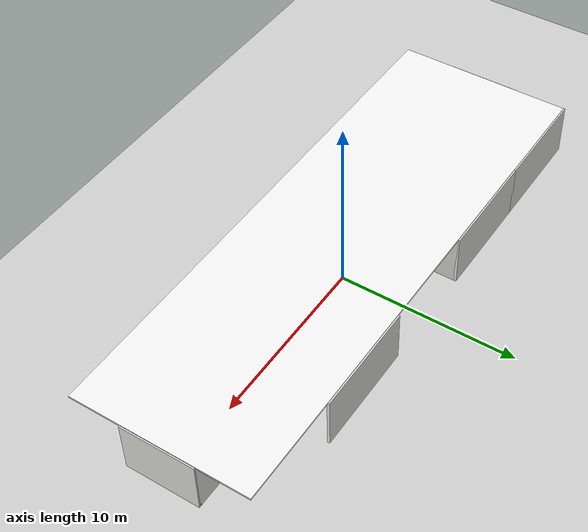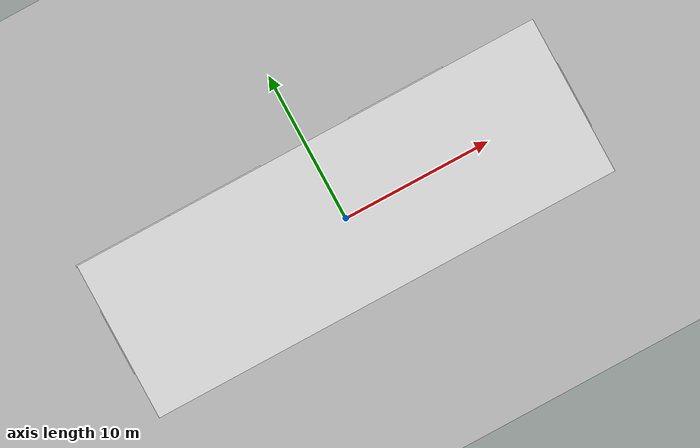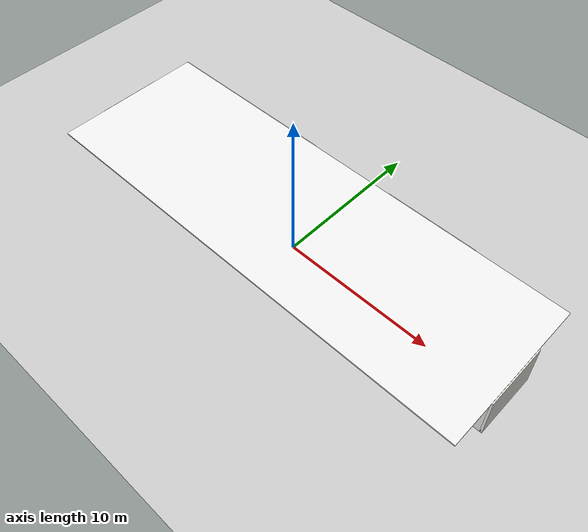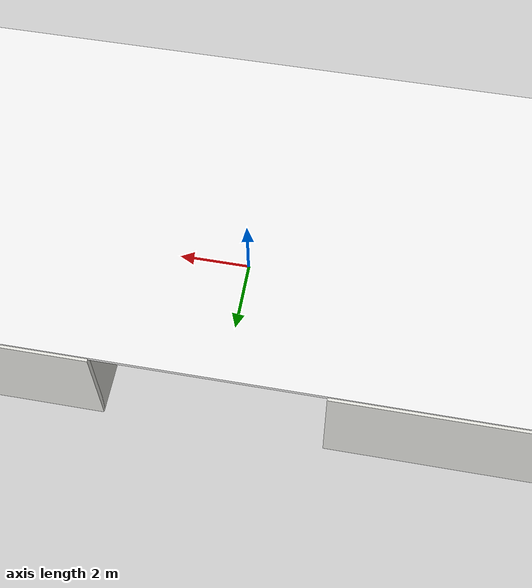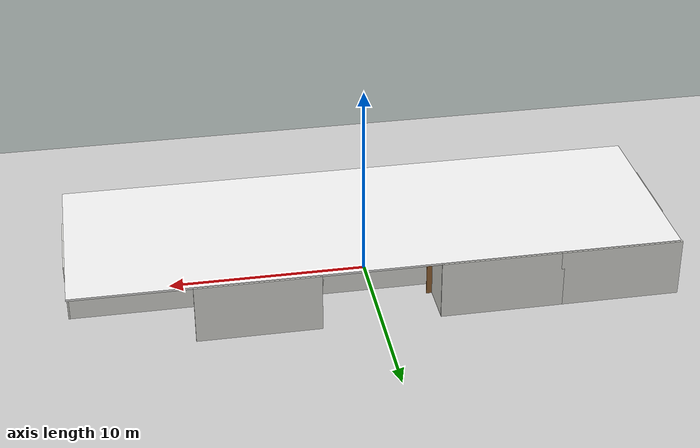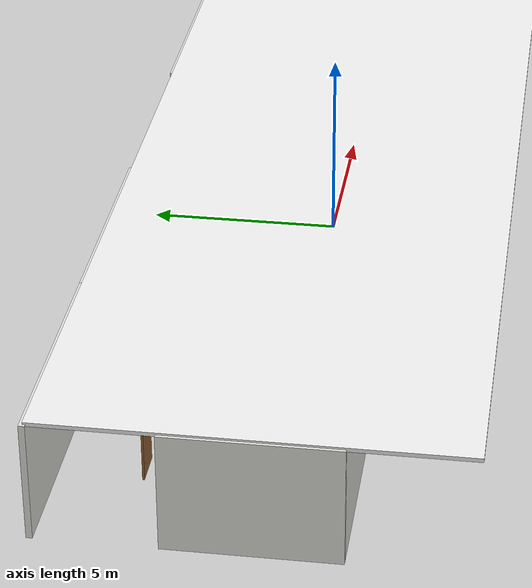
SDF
<?xml version="1.0" ?>
<sdf version="1.8">
  <world name="hospital_corridor">

    <!-- Physics -->
    <physics name="1ms" type="ignored">
      <max_step_size>0.001</max_step_size>
      <real_time_factor>1.0</real_time_factor>
    </physics>

    <!-- Required Ignition plugins -->
    <plugin filename="ignition-gazebo-physics-system"       name="ignition::gazebo::systems::Physics"/>
    <plugin filename="ignition-gazebo-user-commands-system" name="ignition::gazebo::systems::UserCommands"/>
    <plugin filename="ignition-gazebo-scene-broadcaster-system" name="ignition::gazebo::systems::SceneBroadcaster"/>
    <plugin filename="ignition-gazebo-sensors-system"       name="ignition::gazebo::systems::Sensors">
      <render_engine>ogre</render_engine>
    </plugin>

    <!-- Gravity -->
    <gravity>0 0 -9.8</gravity>

    <!-- ==================== LIGHTING ==================== -->
    <light type="directional" name="sun">
      <cast_shadows>true</cast_shadows>
      <pose>0 0 10 0 0 0</pose>
      <diffuse>0.9 0.9 0.85 1</diffuse>
      <specular>0.2 0.2 0.2 1</specular>
      <attenuation><range>1000</range><constant>0.9</constant><linear>0.01</linear><quadratic>0.001</quadratic></attenuation>
      <direction>-0.5 0.1 -0.9</direction>
    </light>

    <!-- Ceiling strip lights -->
    <light type="point" name="light_corridor1">
      <pose>0 0 2.8 0 0 0</pose>
      <diffuse>1 1 0.95 1</diffuse>
      <specular>0.1 0.1 0.1 1</specular>
      <attenuation><range>12</range><constant>0.5</constant><linear>0.1</linear><quadratic>0.01</quadratic></attenuation>
      <cast_shadows>false</cast_shadows>
    </light>

    <light type="point" name="light_corridor2">
      <pose>8 0 2.8 0 0 0</pose>
      <diffuse>1 1 0.95 1</diffuse>
      <specular>0.1 0.1 0.1 1</specular>
      <attenuation><range>12</range><constant>0.5</constant><linear>0.1</linear><quadratic>0.01</quadratic></attenuation>
      <cast_shadows>false</cast_shadows>
    </light>

    <light type="point" name="light_corridor3">
      <pose>-8 0 2.8 0 0 0</pose>
      <diffuse>1 1 0.95 1</diffuse>
      <specular>0.1 0.1 0.1 1</specular>
      <attenuation><range>12</range><constant>0.5</constant><linear>0.1</linear><quadratic>0.01</quadratic></attenuation>
      <cast_shadows>false</cast_shadows>
    </light>

    <!-- ==================== GROUND PLANE ==================== -->
    <model name="ground_plane">
      <static>true</static>
      <link name="link">
        <collision name="collision">
          <geometry><plane><normal>0 0 1</normal><size>50 50</size></plane></geometry>
        </collision>
        <visual name="visual">
          <geometry><plane><normal>0 0 1</normal><size>50 50</size></plane></geometry>
          <material>
            <ambient>0.8 0.8 0.8 1</ambient>
            <diffuse>0.8 0.8 0.8 1</diffuse>
          </material>
        </visual>
      </link>
    </model>

    <!-- ==================== CEILING ==================== -->
    <model name="ceiling">
      <static>true</static>
      <pose>0 0 3.0 0 0 0</pose>
      <link name="link">
        <collision name="collision">
          <geometry><box><size>30 10 0.1</size></box></geometry>
        </collision>
        <visual name="visual">
          <geometry><box><size>30 10 0.1</size></box></geometry>
          <material><ambient>0.95 0.95 0.95 1</ambient><diffuse>0.95 0.95 0.95 1</diffuse></material>
        </visual>
      </link>
    </model>

    <!-- ==================== MAIN CORRIDOR WALLS ==================== -->
    <!-- South wall (long) -->
    <model name="wall_south">
      <static>true</static>
      <pose>0 -2.0 1.5 0 0 0</pose>
      <link name="link">
        <collision name="collision"><geometry><box><size>30 0.15 3.0</size></box></geometry></collision>
        <visual name="visual">
          <geometry><box><size>30 0.15 3.0</size></box></geometry>
          <material><ambient>0.9 0.9 0.88 1</ambient><diffuse>0.9 0.9 0.88 1</diffuse></material>
        </visual>
      </link>
    </model>

    <!-- North wall (long) -->
    <model name="wall_north">
      <static>true</static>
      <pose>0 2.0 1.5 0 0 0</pose>
      <link name="link">
        <collision name="collision"><geometry><box><size>30 0.15 3.0</size></box></geometry></collision>
        <visual name="visual">
          <geometry><box><size>30 0.15 3.0</size></box></geometry>
          <material><ambient>0.9 0.9 0.88 1</ambient><diffuse>0.9 0.9 0.88 1</diffuse></material>
        </visual>
      </link>
    </model>

    <!-- West end wall -->
    <model name="wall_west">
      <static>true</static>
      <pose>-15 0 1.5 0 0 0</pose>
      <link name="link">
        <collision name="collision"><geometry><box><size>0.15 4.15 3.0</size></box></geometry></collision>
        <visual name="visual">
          <geometry><box><size>0.15 4.15 3.0</size></box></geometry>
          <material><ambient>0.9 0.9 0.88 1</ambient><diffuse>0.9 0.9 0.88 1</diffuse></material>
        </visual>
      </link>
    </model>

    <!-- East end wall -->
    <model name="wall_east">
      <static>true</static>
      <pose>15 0 1.5 0 0 0</pose>
      <link name="link">
        <collision name="collision"><geometry><box><size>0.15 4.15 3.0</size></box></geometry></collision>
        <visual name="visual">
          <geometry><box><size>0.15 4.15 3.0</size></box></geometry>
          <material><ambient>0.9 0.9 0.88 1</ambient><diffuse>0.9 0.9 0.88 1</diffuse></material>
        </visual>
      </link>
    </model>

    <!-- ==================== ROOM DIVIDERS (North side) ==================== -->
    <!-- Room divider 1: between x=-15 and x=-9 (room 1) -->
    <model name="divider_n1">
      <static>true</static>
      <pose>-9 3.5 1.5 0 0 0</pose>
      <link name="link">
        <collision name="collision"><geometry><box><size>0.15 3.0 3.0</size></box></geometry></collision>
        <visual name="visual">
          <geometry><box><size>0.15 3.0 3.0</size></box></geometry>
          <material><ambient>0.85 0.85 0.82 1</ambient><diffuse>0.85 0.85 0.82 1</diffuse></material>
        </visual>
      </link>
    </model>

    <!-- Room 1 back wall (north) -->
    <model name="wall_room1_back">
      <static>true</static>
      <pose>-12 5.0 1.5 0 0 0</pose>
      <link name="link">
        <collision name="collision"><geometry><box><size>6.15 0.15 3.0</size></box></geometry></collision>
        <visual name="visual">
          <geometry><box><size>6.15 0.15 3.0</size></box></geometry>
          <material><ambient>0.9 0.9 0.88 1</ambient><diffuse>0.9 0.9 0.88 1</diffuse></material>
        </visual>
      </link>
    </model>

    <!-- Door frame gap for room 1 (open door): wall from x=-9 to x=-11, gap at x=-11 to x=-12 -->
    <model name="wall_room1_door_left">
      <static>true</static>
      <pose>-10.0 2.0 1.5 0 0 0</pose>
      <link name="link">
        <collision name="collision"><geometry><box><size>2.0 0.15 3.0</size></box></geometry></collision>
        <visual name="visual">
          <geometry><box><size>2.0 0.15 3.0</size></box></geometry>
          <material><ambient>0.9 0.9 0.88 1</ambient><diffuse>0.9 0.9 0.88 1</diffuse></material>
        </visual>
      </link>
    </model>

    <!-- Door open (leaning against wall) -->
    <model name="door_room1">
      <static>true</static>
      <pose>-12.1 2.9 1.0 0 0 1.5708</pose>
      <link name="link">
        <collision name="collision"><geometry><box><size>0.05 0.9 2.0</size></box></geometry></collision>
        <visual name="visual">
          <geometry><box><size>0.05 0.9 2.0</size></box></geometry>
          <material><ambient>0.6 0.4 0.2 1</ambient><diffuse>0.6 0.4 0.2 1</diffuse></material>
        </visual>
      </link>
    </model>

    <!-- Room divider 2: between x=-3 and x=3 -->
    <model name="divider_n2">
      <static>true</static>
      <pose>-3 3.5 1.5 0 0 0</pose>
      <link name="link">
        <collision name="collision"><geometry><box><size>0.15 3.0 3.0</size></box></geometry></collision>
        <visual name="visual">
          <geometry><box><size>0.15 3.0 3.0</size></box></geometry>
          <material><ambient>0.85 0.85 0.82 1</ambient><diffuse>0.85 0.85 0.82 1</diffuse></material>
        </visual>
      </link>
    </model>

    <!-- Room 2 back wall -->
    <model name="wall_room2_back">
      <static>true</static>
      <pose>-6 5.0 1.5 0 0 0</pose>
      <link name="link">
        <collision name="collision"><geometry><box><size>6.15 0.15 3.0</size></box></geometry></collision>
        <visual name="visual">
          <geometry><box><size>6.15 0.15 3.0</size></box></geometry>
          <material><ambient>0.9 0.9 0.88 1</ambient><diffuse>0.9 0.9 0.88 1</diffuse></material>
        </visual>
      </link>
    </model>

    <model name="wall_room2_door_left">
      <static>true</static>
      <pose>-4.0 2.0 1.5 0 0 0</pose>
      <link name="link">
        <collision name="collision"><geometry><box><size>2.0 0.15 3.0</size></box></geometry></collision>
        <visual name="visual">
          <geometry><box><size>2.0 0.15 3.0</size></box></geometry>
          <material><ambient>0.9 0.9 0.88 1</ambient><diffuse>0.9 0.9 0.88 1</diffuse></material>
        </visual>
      </link>
    </model>

    <model name="door_room2">
      <static>true</static>
      <pose>-3.1 2.9 1.0 0 0 1.5708</pose>
      <link name="link">
        <collision name="collision"><geometry><box><size>0.05 0.9 2.0</size></box></geometry></collision>
        <visual name="visual">
          <geometry><box><size>0.05 0.9 2.0</size></box></geometry>
          <material><ambient>0.6 0.4 0.2 1</ambient><diffuse>0.6 0.4 0.2 1</diffuse></material>
        </visual>
      </link>
    </model>

    <!-- Room divider 3: between x=3 and x=9 -->
    <model name="divider_n3">
      <static>true</static>
      <pose>3 3.5 1.5 0 0 0</pose>
      <link name="link">
        <collision name="collision"><geometry><box><size>0.15 3.0 3.0</size></box></geometry></collision>
        <visual name="visual">
          <geometry><box><size>0.15 3.0 3.0</size></box></geometry>
          <material><ambient>0.85 0.85 0.82 1</ambient><diffuse>0.85 0.85 0.82 1</diffuse></material>
        </visual>
      </link>
    </model>

    <model name="wall_room3_back">
      <static>true</static>
      <pose>6 5.0 1.5 0 0 0</pose>
      <link name="link">
        <collision name="collision"><geometry><box><size>6.15 0.15 3.0</size></box></geometry></collision>
        <visual name="visual">
          <geometry><box><size>6.15 0.15 3.0</size></box></geometry>
          <material><ambient>0.9 0.9 0.88 1</ambient><diffuse>0.9 0.9 0.88 1</diffuse></material>
        </visual>
      </link>
    </model>

    <model name="wall_room3_door_left">
      <static>true</static>
      <pose>2.0 2.0 1.5 0 0 0</pose>
      <link name="link">
        <collision name="collision"><geometry><box><size>2.0 0.15 3.0</size></box></geometry></collision>
        <visual name="visual">
          <geometry><box><size>2.0 0.15 3.0</size></box></geometry>
          <material><ambient>0.9 0.9 0.88 1</ambient><diffuse>0.9 0.9 0.88 1</diffuse></material>
        </visual>
      </link>
    </model>

    <model name="door_room3">
      <static>true</static>
      <pose>3.1 2.9 1.0 0 0 1.5708</pose>
      <link name="link">
        <collision name="collision"><geometry><box><size>0.05 0.9 2.0</size></box></geometry></collision>
        <visual name="visual">
          <geometry><box><size>0.05 0.9 2.0</size></box></geometry>
          <material><ambient>0.6 0.4 0.2 1</ambient><diffuse>0.6 0.4 0.2 1</diffuse></material>
        </visual>
      </link>
    </model>

    <!-- ==================== OBSTACLES IN CORRIDOR ==================== -->

    <!-- Hospital Bed 1 (box + legs) near room 1 door -->
    <model name="bed1">
      <static>true</static>
      <pose>-12 -1.2 0.45 0 0 0</pose>
      <link name="link">
        <collision name="collision"><geometry><box><size>2.0 0.9 0.1</size></box></geometry></collision>
        <visual name="visual">
          <geometry><box><size>2.0 0.9 0.1</size></box></geometry>
          <material><ambient>0.9 0.9 0.9 1</ambient><diffuse>0.9 0.9 0.9 1</diffuse></material>
        </visual>
      </link>
    </model>
    <model name="bed1_frame">
      <static>true</static>
      <pose>-12 -1.2 0.22 0 0 0</pose>
      <link name="link">
        <collision name="collision"><geometry><box><size>2.1 1.0 0.44</size></box></geometry></collision>
        <visual name="visual">
          <geometry><box><size>2.1 1.0 0.44</size></box></geometry>
          <material><ambient>0.7 0.7 0.75 1</ambient><diffuse>0.7 0.7 0.75 1</diffuse></material>
        </visual>
      </link>
    </model>

    <!-- Hospital Bed 2 near room 3 door -->
    <model name="bed2">
      <static>true</static>
      <pose>6 -1.2 0.45 0 0 0</pose>
      <link name="link">
        <collision name="collision"><geometry><box><size>2.0 0.9 0.1</size></box></geometry></collision>
        <visual name="visual">
          <geometry><box><size>2.0 0.9 0.1</size></box></geometry>
          <material><ambient>0.9 0.9 0.9 1</ambient><diffuse>0.9 0.9 0.9 1</diffuse></material>
        </visual>
      </link>
    </model>
    <model name="bed2_frame">
      <static>true</static>
      <pose>6 -1.2 0.22 0 0 0</pose>
      <link name="link">
        <collision name="collision"><geometry><box><size>2.1 1.0 0.44</size></box></geometry></collision>
        <visual name="visual">
          <geometry><box><size>2.1 1.0 0.44</size></box></geometry>
          <material><ambient>0.7 0.7 0.75 1</ambient><diffuse>0.7 0.7 0.75 1</diffuse></material>
        </visual>
      </link>
    </model>

    <!-- Chair 1 -->
    <model name="chair1">
      <static>true</static>
      <pose>-6 1.5 0.22 0 0 0</pose>
      <link name="link">
        <!-- Seat -->
        <collision name="seat_col"><pose>0 0 0 0 0 0</pose><geometry><box><size>0.45 0.45 0.05</size></box></geometry></collision>
        <visual name="seat_vis">
          <pose>0 0 0 0 0 0</pose>
          <geometry><box><size>0.45 0.45 0.05</size></box></geometry>
          <material><ambient>0.3 0.3 0.7 1</ambient><diffuse>0.3 0.3 0.7 1</diffuse></material>
        </visual>
        <!-- Back rest -->
        <collision name="back_col"><pose>0 -0.2 0.25 0 0 0</pose><geometry><box><size>0.45 0.05 0.5</size></box></geometry></collision>
        <visual name="back_vis">
          <pose>0 -0.2 0.25 0 0 0</pose>
          <geometry><box><size>0.45 0.05 0.5</size></box></geometry>
          <material><ambient>0.3 0.3 0.7 1</ambient><diffuse>0.3 0.3 0.7 1</diffuse></material>
        </visual>
      </link>
    </model>

    <!-- Chair 2 -->
    <model name="chair2">
      <static>true</static>
      <pose>-6 -1.5 0.22 0 0 3.14159</pose>
      <link name="link">
        <collision name="seat_col"><pose>0 0 0 0 0 0</pose><geometry><box><size>0.45 0.45 0.05</size></box></geometry></collision>
        <visual name="seat_vis">
          <pose>0 0 0 0 0 0</pose>
          <geometry><box><size>0.45 0.45 0.05</size></box></geometry>
          <material><ambient>0.3 0.3 0.7 1</ambient><diffuse>0.3 0.3 0.7 1</diffuse></material>
        </visual>
        <collision name="back_col"><pose>0 -0.2 0.25 0 0 0</pose><geometry><box><size>0.45 0.05 0.5</size></box></geometry></collision>
        <visual name="back_vis">
          <pose>0 -0.2 0.25 0 0 0</pose>
          <geometry><box><size>0.45 0.05 0.5</size></box></geometry>
          <material><ambient>0.3 0.3 0.7 1</ambient><diffuse>0.3 0.3 0.7 1</diffuse></material>
        </visual>
      </link>
    </model>

    <!-- Medical Trolley 1 (cylinder body + box tray) -->
    <model name="trolley1">
      <static>true</static>
      <pose>-1.0 1.6 0.5 0 0 0</pose>
      <link name="link">
        <!-- Post -->
        <collision name="post_col"><pose>0 0 0 0 0 0</pose><geometry><cylinder><radius>0.04</radius><length>1.0</length></cylinder></geometry></collision>
        <visual name="post_vis">
          <pose>0 0 0 0 0 0</pose>
          <geometry><cylinder><radius>0.04</radius><length>1.0</length></cylinder></geometry>
          <material><ambient>0.8 0.8 0.8 1</ambient><diffuse>0.8 0.8 0.8 1</diffuse></material>
        </visual>
        <!-- Tray -->
        <collision name="tray_col"><pose>0 0 0.45 0 0 0</pose><geometry><box><size>0.5 0.35 0.05</size></box></geometry></collision>
        <visual name="tray_vis">
          <pose>0 0 0.45 0 0 0</pose>
          <geometry><box><size>0.5 0.35 0.05</size></box></geometry>
          <material><ambient>0.85 0.85 0.85 1</ambient><diffuse>0.85 0.85 0.85 1</diffuse></material>
        </visual>
      </link>
    </model>

    <!-- Medical Trolley 2 -->
    <model name="trolley2">
      <static>true</static>
      <pose>9.0 -1.6 0.5 0 0 0</pose>
      <link name="link">
        <collision name="post_col"><pose>0 0 0 0 0 0</pose><geometry><cylinder><radius>0.04</radius><length>1.0</length></cylinder></geometry></collision>
        <visual name="post_vis">
          <pose>0 0 0 0 0 0</pose>
          <geometry><cylinder><radius>0.04</radius><length>1.0</length></cylinder></geometry>
          <material><ambient>0.8 0.8 0.8 1</ambient><diffuse>0.8 0.8 0.8 1</diffuse></material>
        </visual>
        <collision name="tray_col"><pose>0 0 0.45 0 0 0</pose><geometry><box><size>0.5 0.35 0.05</size></box></geometry></collision>
        <visual name="tray_vis">
          <pose>0 0 0.45 0 0 0</pose>
          <geometry><box><size>0.5 0.35 0.05</size></box></geometry>
          <material><ambient>0.85 0.85 0.85 1</ambient><diffuse>0.85 0.85 0.85 1</diffuse></material>
        </visual>
      </link>
    </model>

    <!-- Waste bin (cylinder) -->
    <model name="waste_bin">
      <static>true</static>
      <pose>-14.5 1.7 0.3 0 0 0</pose>
      <link name="link">
        <collision name="col"><geometry><cylinder><radius>0.18</radius><length>0.6</length></cylinder></geometry></collision>
        <visual name="vis">
          <geometry><cylinder><radius>0.18</radius><length>0.6</length></cylinder></geometry>
          <material><ambient>0.2 0.6 0.2 1</ambient><diffuse>0.2 0.6 0.2 1</diffuse></material>
        </visual>
      </link>
    </model>

    <!-- Nurse station desk (box) -->
    <model name="nurse_desk">
      <static>true</static>
      <pose>3.0 0 0.45 0 0 0</pose>
      <link name="link">
        <collision name="col"><geometry><box><size>1.8 0.7 0.9</size></box></geometry></collision>
        <visual name="vis">
          <geometry><box><size>1.8 0.7 0.9</size></box></geometry>
          <material><ambient>0.55 0.45 0.35 1</ambient><diffuse>0.55 0.45 0.35 1</diffuse></material>
        </visual>
      </link>
    </model>

    <!-- Box obstacle 1 -->
    <model name="supply_box1">
      <static>true</static>
      <pose>13.5 1.5 0.25 0 0 0</pose>
      <link name="link">
        <collision name="col"><geometry><box><size>0.5 0.5 0.5</size></box></geometry></collision>
        <visual name="vis">
          <geometry><box><size>0.5 0.5 0.5</size></box></geometry>
          <material><ambient>0.7 0.6 0.3 1</ambient><diffuse>0.7 0.6 0.3 1</diffuse></material>
        </visual>
      </link>
    </model>

    <!-- Box obstacle 2 stacked -->
    <model name="supply_box2">
      <static>true</static>
      <pose>13.5 1.5 0.75 0 0 0</pose>
      <link name="link">
        <collision name="col"><geometry><box><size>0.5 0.5 0.5</size></box></geometry></collision>
        <visual name="vis">
          <geometry><box><size>0.5 0.5 0.5</size></box></geometry>
          <material><ambient>0.6 0.5 0.25 1</ambient><diffuse>0.6 0.5 0.25 1</diffuse></material>
        </visual>
      </link>
    </model>

  </world>
</sdf>
